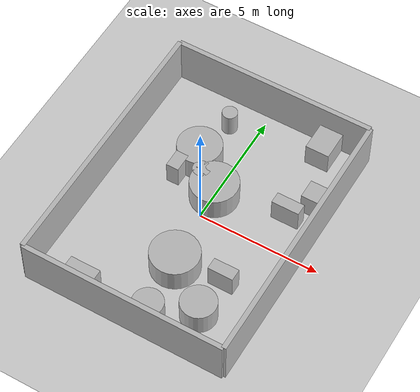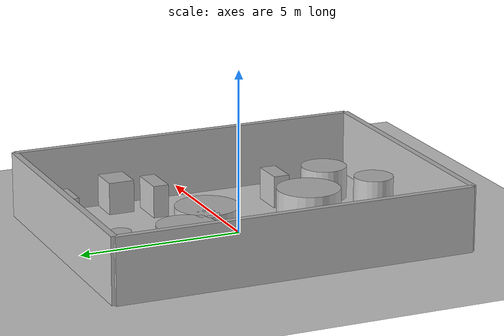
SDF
<?xml version="1.0"?>
<sdf version="1.6">
  <world name="env_98">

    <include><uri>model://ground_plane</uri></include>
    <include><uri>model://sun</uri></include>

    <!-- WALLS -->
    <model name="wall_north"><static>true</static><pose>0 5.52080238113823 1 0 0 0</pose>
      <link name="link"><collision name="collision">
        <geometry><box><size>8.383632640999055 0.2 2</size></box></geometry>
      </collision><visual name="visual">
        <geometry><box><size>8.383632640999055 0.2 2</size></box></geometry>
      </visual></link>
    </model>

    <model name="wall_south"><static>true</static><pose>0 -5.52080238113823 1 0 0 0</pose>
      <link name="link"><collision name="collision">
        <geometry><box><size>8.383632640999055 0.2 2</size></box></geometry>
      </collision><visual name="visual">
        <geometry><box><size>8.383632640999055 0.2 2</size></box></geometry>
      </visual></link>
    </model>

    <model name="wall_east"><static>true</static><pose>4.191816320499528 0 1 0 0 1.57</pose>
      <link name="link"><collision name="collision">
        <geometry><box><size>11.04160476227646 0.2 2</size></box></geometry>
      </collision><visual name="visual">
        <geometry><box><size>11.04160476227646 0.2 2</size></box></geometry>
      </visual></link>
    </model>

    <model name="wall_west"><static>true</static><pose>-4.191816320499528 0 1 0 0 1.57</pose>
      <link name="link"><collision name="collision">
        <geometry><box><size>11.04160476227646 0.2 2</size></box></geometry>
      </collision><visual name="visual">
        <geometry><box><size>11.04160476227646 0.2 2</size></box></geometry>
      </visual></link>
    </model>

    <!-- SENSOR -->

    <model name="lidar_sensor">
      <static>true</static>
      <pose>2.0756837783942874 4.393634340365452 0.4 0 0 0</pose>
      <link name="link">
        <sensor name="lidar" type="ray">
          <pose>0 0 0 0 0 0</pose>
          <visualize>true</visualize>
          <always_on>true</always_on>
          <update_rate>10</update_rate>
          <ray>
            <scan><horizontal>
              <samples>180</samples>
              <resolution>1</resolution>
              <min_angle>-3.14159</min_angle>
              <max_angle>3.14159</max_angle>
            </horizontal></scan>
            <range><min>0.15</min><max>20.0</max><resolution>0.01</resolution></range>
          </ray>
          <plugin name="lidar_plugin" filename="liblidar_plugin.so"/>
        </sensor>
      </link>
    </model>

    <!-- OBSTACLES -->

    <model name="obstacle_0">
      <static>true</static>
      <pose>-1.7193628101055676 1.1763270091962212 0.5 0 0 0</pose>
      <link name="link">
        <collision name="collision">
          <geometry><box><size>0.52 0.77 1.0</size></box></geometry>
        </collision>
        <visual name="visual">
          <geometry><box><size>0.52 0.77 1.0</size></box></geometry>
        </visual>
      </link>
    </model>

    <model name="obstacle_1">
      <static>true</static>
      <pose>2.2478829828853923 -2.1731358528758307 0.5 0 0 0</pose>
      <link name="link">
        <collision name="collision">
          <geometry><box><size>1.04 0.5 1.0</size></box></geometry>
        </collision>
        <visual name="visual">
          <geometry><box><size>1.04 0.5 1.0</size></box></geometry>
        </visual>
      </link>
    </model>

    <model name="obstacle_2">
      <static>true</static>
      <pose>-1.3570294283745579 2.237335845218757 0.5 0 0 0</pose>
      <link name="link">
        <collision name="collision">
          <geometry><cylinder><radius>0.9</radius><length>1.0</length></cylinder></geometry>
        </collision>
        <visual name="visual">
          <geometry><cylinder><radius>0.9</radius><length>1.0</length></cylinder></geometry>
        </visual>
      </link>
    </model>

    <model name="obstacle_3">
      <static>true</static>
      <pose>-1.1473159038386376 4.174875043648472 0.5 0 0 0</pose>
      <link name="link">
        <collision name="collision">
          <geometry><cylinder><radius>0.31</radius><length>1.0</length></cylinder></geometry>
        </collision>
        <visual name="visual">
          <geometry><cylinder><radius>0.31</radius><length>1.0</length></cylinder></geometry>
        </visual>
      </link>
    </model>

    <model name="obstacle_4">
      <static>true</static>
      <pose>-0.73052263329879 1.3158497621359126 0.5 0 0 0</pose>
      <link name="link">
        <collision name="collision">
          <geometry><cylinder><radius>0.36</radius><length>1.0</length></cylinder></geometry>
        </collision>
        <visual name="visual">
          <geometry><cylinder><radius>0.36</radius><length>1.0</length></cylinder></geometry>
        </visual>
      </link>
    </model>

    <model name="obstacle_5">
      <static>true</static>
      <pose>2.6576753717257002 4.890534015782455 0.5 0 0 0</pose>
      <link name="link">
        <collision name="collision">
          <geometry><box><size>0.98 1.32 1.0</size></box></geometry>
        </collision>
        <visual name="visual">
          <geometry><box><size>0.98 1.32 1.0</size></box></geometry>
        </visual>
      </link>
    </model>

    <model name="obstacle_6">
      <static>true</static>
      <pose>0.00020731428912323935 1.0275847005164698 0.5 0 0 0</pose>
      <link name="link">
        <collision name="collision">
          <geometry><cylinder><radius>0.97</radius><length>1.0</length></cylinder></geometry>
        </collision>
        <visual name="visual">
          <geometry><cylinder><radius>0.97</radius><length>1.0</length></cylinder></geometry>
        </visual>
      </link>
    </model>

    <model name="obstacle_7">
      <static>true</static>
      <pose>-2.189967022308495 -4.790201193566522 0.5 0 0 0</pose>
      <link name="link">
        <collision name="collision">
          <geometry><box><size>1.25 0.56 1.0</size></box></geometry>
        </collision>
        <visual name="visual">
          <geometry><box><size>1.25 0.56 1.0</size></box></geometry>
        </visual>
      </link>
    </model>

    <model name="obstacle_8">
      <static>true</static>
      <pose>3.6907365963803276 2.5176704921817397 0.5 0 0 0</pose>
      <link name="link">
        <collision name="collision">
          <geometry><box><size>1.14 0.8 1.0</size></box></geometry>
        </collision>
        <visual name="visual">
          <geometry><box><size>1.14 0.8 1.0</size></box></geometry>
        </visual>
      </link>
    </model>

    <model name="obstacle_9">
      <static>true</static>
      <pose>0.3456723271740705 -2.4354339114691688 0.5 0 0 0</pose>
      <link name="link">
        <collision name="collision">
          <geometry><cylinder><radius>0.98</radius><length>1.0</length></cylinder></geometry>
        </collision>
        <visual name="visual">
          <geometry><cylinder><radius>0.98</radius><length>1.0</length></cylinder></geometry>
        </visual>
      </link>
    </model>

    <model name="obstacle_10">
      <static>true</static>
      <pose>2.1699741609865137 -3.81437995011758 0.5 0 0 0</pose>
      <link name="link">
        <collision name="collision">
          <geometry><cylinder><radius>0.71</radius><length>1.0</length></cylinder></geometry>
        </collision>
        <visual name="visual">
          <geometry><cylinder><radius>0.71</radius><length>1.0</length></cylinder></geometry>
        </visual>
      </link>
    </model>

    <model name="obstacle_11">
      <static>true</static>
      <pose>0.6036396670156572 -4.747207922820857 0.5 0 0 0</pose>
      <link name="link">
        <collision name="collision">
          <geometry><cylinder><radius>0.61</radius><length>1.0</length></cylinder></geometry>
        </collision>
        <visual name="visual">
          <geometry><cylinder><radius>0.61</radius><length>1.0</length></cylinder></geometry>
        </visual>
      </link>
    </model>

    <model name="obstacle_12">
      <static>true</static>
      <pose>2.871604624926796 1.558977282931874 0.5 0 0 0</pose>
      <link name="link">
        <collision name="collision">
          <geometry><box><size>1.14 0.48 1.0</size></box></geometry>
        </collision>
        <visual name="visual">
          <geometry><box><size>1.14 0.48 1.0</size></box></geometry>
        </visual>
      </link>
    </model>

  </world>
</sdf>
